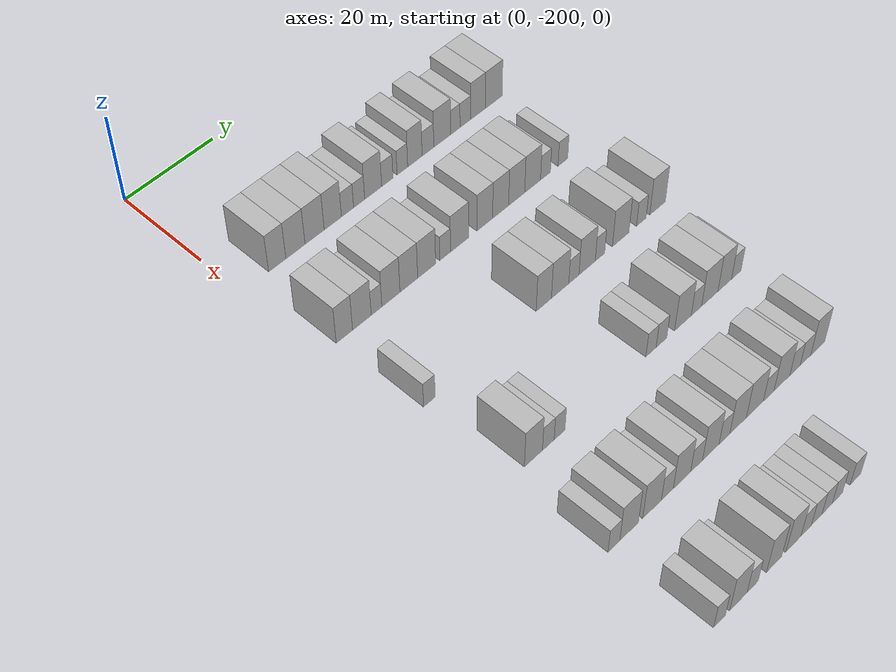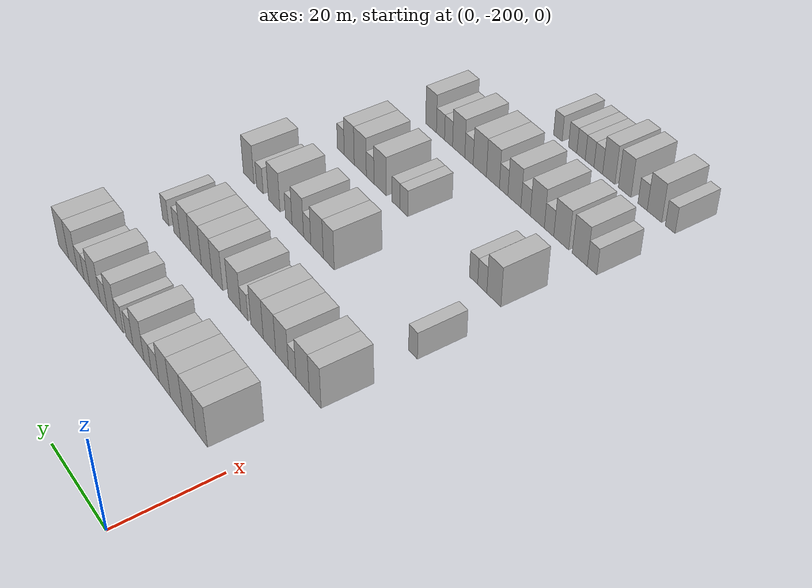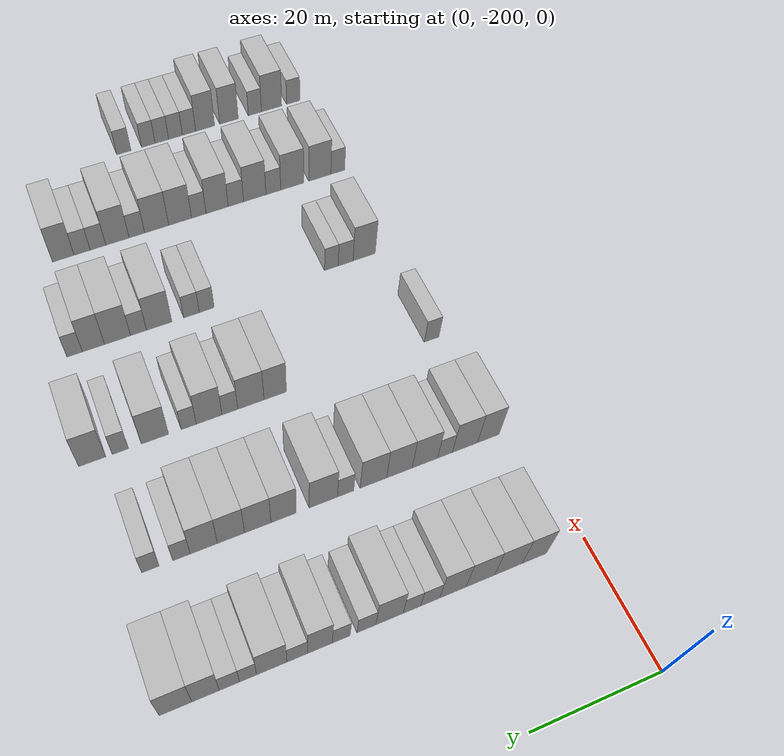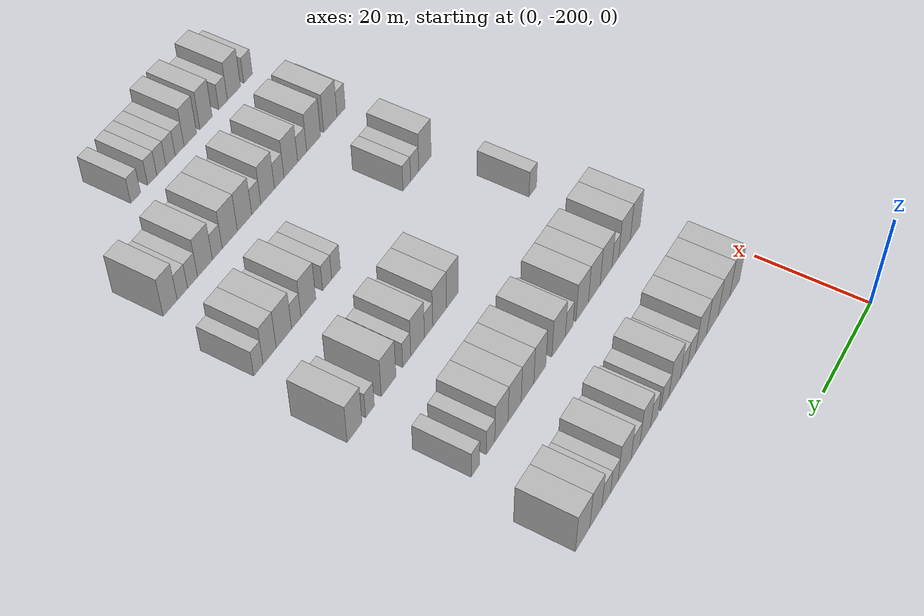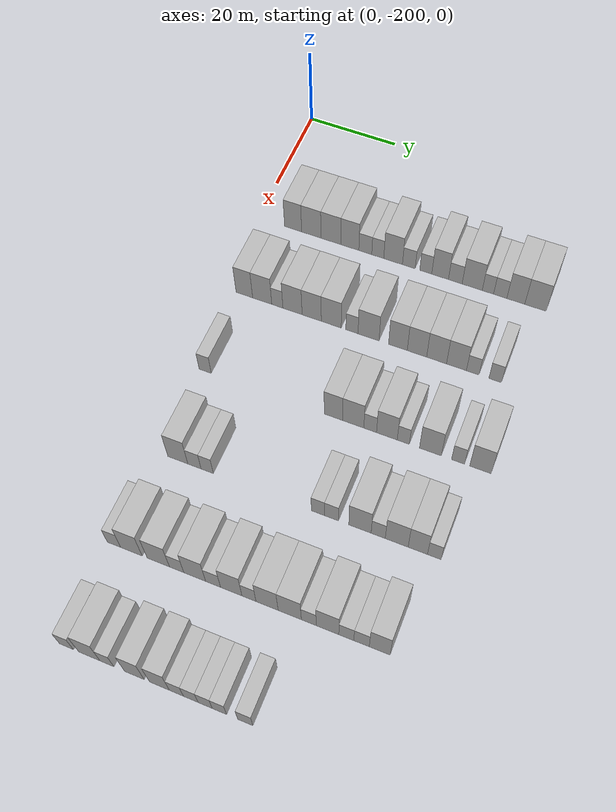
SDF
<sdf version="1.6">
 <world name="default">
  <model name="building_33">
   <static>1</static>
   <pose>25.0000 -191.9185 0 0.000000 0.000000 0.000000</pose>
   <link name="link">
    <pose>0 0 4.50 0 0 0</pose>
    <collision name="collision"><geometry><box><size>10.0000 3.9061 9.0000</size></box></geometry></collision>
    <visual name="visual">
     <cast_shadows>0</cast_shadows>
     <geometry><box><size>10.0000 3.9061 9.0000</size></box></geometry>
     <material>
      <script>
       <uri>model://HANNAS_wall/materials/scripts</uri>
       <uri>model://HANNAS_wall/materials/textures</uri>
       <name>vrc/HANNAS_wall</name>
      </script>
     </material>
    </visual>
   </link>
  </model>
  <model name="building_34">
   <static>1</static>
   <pose>25.0000 -187.7657 0 0.000000 0.000000 0.000000</pose>
   <link name="link">
    <pose>0 0 4.50 0 0 0</pose>
    <collision name="collision"><geometry><box><size>10.0000 4.3996 9.0000</size></box></geometry></collision>
    <visual name="visual">
     <cast_shadows>0</cast_shadows>
     <geometry><box><size>10.0000 4.3996 9.0000</size></box></geometry>
     <material>
      <script>
       <uri>model://HANNAS_wall/materials/scripts</uri>
       <uri>model://HANNAS_wall/materials/textures</uri>
       <name>vrc/HANNAS_wall</name>
      </script>
     </material>
    </visual>
   </link>
  </model>
  <model name="building_35">
   <static>1</static>
   <pose>25.0000 -183.3418 0 0.000000 0.000000 0.000000</pose>
   <link name="link">
    <pose>0 0 4.50 0 0 0</pose>
    <collision name="collision"><geometry><box><size>10.0000 4.4481 9.0000</size></box></geometry></collision>
    <visual name="visual">
     <cast_shadows>0</cast_shadows>
     <geometry><box><size>10.0000 4.4481 9.0000</size></box></geometry>
     <material>
      <script>
       <uri>model://HANNAS_wall/materials/scripts</uri>
       <uri>model://HANNAS_wall/materials/textures</uri>
       <name>vrc/HANNAS_wall</name>
      </script>
     </material>
    </visual>
   </link>
  </model>
  <model name="building_36">
   <static>1</static>
   <pose>25.0000 -179.0814 0 0.000000 0.000000 0.000000</pose>
   <link name="link">
    <pose>0 0 4.50 0 0 0</pose>
    <collision name="collision"><geometry><box><size>10.0000 4.0726 9.0000</size></box></geometry></collision>
    <visual name="visual">
     <cast_shadows>0</cast_shadows>
     <geometry><box><size>10.0000 4.0726 9.0000</size></box></geometry>
     <material>
      <script>
       <uri>model://HANNAS_wall/materials/scripts</uri>
       <uri>model://HANNAS_wall/materials/textures</uri>
       <name>vrc/HANNAS_wall</name>
      </script>
     </material>
    </visual>
   </link>
  </model>
  <model name="building_37">
   <static>1</static>
   <pose>25.0000 -175.6063 0 0.000000 0.000000 0.000000</pose>
   <link name="link">
    <pose>0 0 3.00 0 0 0</pose>
    <collision name="collision"><geometry><box><size>10.0000 2.8776 6.0000</size></box></geometry></collision>
    <visual name="visual">
     <cast_shadows>0</cast_shadows>
     <geometry><box><size>10.0000 2.8776 6.0000</size></box></geometry>
     <material>
      <script>
       <uri>model://HANNAS_wall/materials/scripts</uri>
       <uri>model://HANNAS_wall/materials/textures</uri>
       <name>vrc/HANNAS_wall</name>
      </script>
     </material>
    </visual>
   </link>
  </model>
  <model name="building_38">
   <static>1</static>
   <pose>25.0000 -172.8382 0 0.000000 0.000000 0.000000</pose>
   <link name="link">
    <pose>0 0 3.00 0 0 0</pose>
    <collision name="collision"><geometry><box><size>10.0000 2.6586 6.0000</size></box></geometry></collision>
    <visual name="visual">
     <cast_shadows>0</cast_shadows>
     <geometry><box><size>10.0000 2.6586 6.0000</size></box></geometry>
     <material>
      <script>
       <uri>model://HANNAS_wall/materials/scripts</uri>
       <uri>model://HANNAS_wall/materials/textures</uri>
       <name>vrc/HANNAS_wall</name>
      </script>
     </material>
    </visual>
   </link>
  </model>
  <model name="building_39">
   <static>1</static>
   <pose>25.0000 -169.4492 0 0.000000 0.000000 0.000000</pose>
   <link name="link">
    <pose>0 0 4.50 0 0 0</pose>
    <collision name="collision"><geometry><box><size>10.0000 4.1195 9.0000</size></box></geometry></collision>
    <visual name="visual">
     <cast_shadows>0</cast_shadows>
     <geometry><box><size>10.0000 4.1195 9.0000</size></box></geometry>
     <material>
      <script>
       <uri>model://HANNAS_wall/materials/scripts</uri>
       <uri>model://HANNAS_wall/materials/textures</uri>
       <name>vrc/HANNAS_wall</name>
      </script>
     </material>
    </visual>
   </link>
  </model>
  <model name="building_40">
   <static>1</static>
   <pose>25.0000 -165.9965 0 0.000000 0.000000 0.000000</pose>
   <link name="link">
    <pose>0 0 3.00 0 0 0</pose>
    <collision name="collision"><geometry><box><size>10.0000 2.7859 6.0000</size></box></geometry></collision>
    <visual name="visual">
     <cast_shadows>0</cast_shadows>
     <geometry><box><size>10.0000 2.7859 6.0000</size></box></geometry>
     <material>
      <script>
       <uri>model://HANNAS_wall/materials/scripts</uri>
       <uri>model://HANNAS_wall/materials/textures</uri>
       <name>vrc/HANNAS_wall</name>
      </script>
     </material>
    </visual>
   </link>
  </model>
  <model name="building_41">
   <static>1</static>
   <pose>25.0000 -162.2922 0 0.000000 0.000000 0.000000</pose>
   <link name="link">
    <pose>0 0 3.00 0 0 0</pose>
    <collision name="collision"><geometry><box><size>10.0000 2.6226 6.0000</size></box></geometry></collision>
    <visual name="visual">
     <cast_shadows>0</cast_shadows>
     <geometry><box><size>10.0000 2.6226 6.0000</size></box></geometry>
     <material>
      <script>
       <uri>model://HANNAS_wall/materials/scripts</uri>
       <uri>model://HANNAS_wall/materials/textures</uri>
       <name>vrc/HANNAS_wall</name>
      </script>
     </material>
    </visual>
   </link>
  </model>
  <model name="building_42">
   <static>1</static>
   <pose>25.0000 -159.1725 0 0.000000 0.000000 0.000000</pose>
   <link name="link">
    <pose>0 0 4.50 0 0 0</pose>
    <collision name="collision"><geometry><box><size>10.0000 3.6168 9.0000</size></box></geometry></collision>
    <visual name="visual">
     <cast_shadows>0</cast_shadows>
     <geometry><box><size>10.0000 3.6168 9.0000</size></box></geometry>
     <material>
      <script>
       <uri>model://HANNAS_wall/materials/scripts</uri>
       <uri>model://HANNAS_wall/materials/textures</uri>
       <name>vrc/HANNAS_wall</name>
      </script>
     </material>
    </visual>
   </link>
  </model>
  <model name="building_43">
   <static>1</static>
   <pose>25.0000 -155.8891 0 0.000000 0.000000 0.000000</pose>
   <link name="link">
    <pose>0 0 3.00 0 0 0</pose>
    <collision name="collision"><geometry><box><size>10.0000 2.9499 6.0000</size></box></geometry></collision>
    <visual name="visual">
     <cast_shadows>0</cast_shadows>
     <geometry><box><size>10.0000 2.9499 6.0000</size></box></geometry>
     <material>
      <script>
       <uri>model://HANNAS_wall/materials/scripts</uri>
       <uri>model://HANNAS_wall/materials/textures</uri>
       <name>vrc/HANNAS_wall</name>
      </script>
     </material>
    </visual>
   </link>
  </model>
  <model name="building_44">
   <static>1</static>
   <pose>25.0000 -152.2592 0 0.000000 0.000000 0.000000</pose>
   <link name="link">
    <pose>0 0 4.50 0 0 0</pose>
    <collision name="collision"><geometry><box><size>10.0000 4.3100 9.0000</size></box></geometry></collision>
    <visual name="visual">
     <cast_shadows>0</cast_shadows>
     <geometry><box><size>10.0000 4.3100 9.0000</size></box></geometry>
     <material>
      <script>
       <uri>model://HANNAS_wall/materials/scripts</uri>
       <uri>model://HANNAS_wall/materials/textures</uri>
       <name>vrc/HANNAS_wall</name>
      </script>
     </material>
    </visual>
   </link>
  </model>
  <model name="building_45">
   <static>1</static>
   <pose>25.0000 -148.8982 0 0.000000 0.000000 0.000000</pose>
   <link name="link">
    <pose>0 0 3.00 0 0 0</pose>
    <collision name="collision"><geometry><box><size>10.0000 2.4118 6.0000</size></box></geometry></collision>
    <visual name="visual">
     <cast_shadows>0</cast_shadows>
     <geometry><box><size>10.0000 2.4118 6.0000</size></box></geometry>
     <material>
      <script>
       <uri>model://HANNAS_wall/materials/scripts</uri>
       <uri>model://HANNAS_wall/materials/textures</uri>
       <name>vrc/HANNAS_wall</name>
      </script>
     </material>
    </visual>
   </link>
  </model>
  <model name="building_46">
   <static>1</static>
   <pose>25.0000 -146.2848 0 0.000000 0.000000 0.000000</pose>
   <link name="link">
    <pose>0 0 3.00 0 0 0</pose>
    <collision name="collision"><geometry><box><size>10.0000 2.8150 6.0000</size></box></geometry></collision>
    <visual name="visual">
     <cast_shadows>0</cast_shadows>
     <geometry><box><size>10.0000 2.8150 6.0000</size></box></geometry>
     <material>
      <script>
       <uri>model://HANNAS_wall/materials/scripts</uri>
       <uri>model://HANNAS_wall/materials/textures</uri>
       <name>vrc/HANNAS_wall</name>
      </script>
     </material>
    </visual>
   </link>
  </model>
  <model name="building_47">
   <static>1</static>
   <pose>25.0000 -142.9881 0 0.000000 0.000000 0.000000</pose>
   <link name="link">
    <pose>0 0 4.50 0 0 0</pose>
    <collision name="collision"><geometry><box><size>10.0000 3.7786 9.0000</size></box></geometry></collision>
    <visual name="visual">
     <cast_shadows>0</cast_shadows>
     <geometry><box><size>10.0000 3.7786 9.0000</size></box></geometry>
     <material>
      <script>
       <uri>model://HANNAS_wall/materials/scripts</uri>
       <uri>model://HANNAS_wall/materials/textures</uri>
       <name>vrc/HANNAS_wall</name>
      </script>
     </material>
    </visual>
   </link>
  </model>
  <model name="building_48">
   <static>1</static>
   <pose>25.0000 -138.8593 0 0.000000 0.000000 0.000000</pose>
   <link name="link">
    <pose>0 0 4.50 0 0 0</pose>
    <collision name="collision"><geometry><box><size>10.0000 4.4790 9.0000</size></box></geometry></collision>
    <visual name="visual">
     <cast_shadows>0</cast_shadows>
     <geometry><box><size>10.0000 4.4790 9.0000</size></box></geometry>
     <material>
      <script>
       <uri>model://HANNAS_wall/materials/scripts</uri>
       <uri>model://HANNAS_wall/materials/textures</uri>
       <name>vrc/HANNAS_wall</name>
      </script>
     </material>
    </visual>
   </link>
  </model>
  <model name="building_207">
   <static>1</static>
   <pose>44.0000 -194.6376 0 0.000000 0.000000 0.000000</pose>
   <link name="link">
    <pose>0 0 4.50 0 0 0</pose>
    <collision name="collision"><geometry><box><size>10.0000 3.6764 9.0000</size></box></geometry></collision>
    <visual name="visual">
     <cast_shadows>0</cast_shadows>
     <geometry><box><size>10.0000 3.6764 9.0000</size></box></geometry>
     <material>
      <script>
       <uri>model://HANNAS_wall/materials/scripts</uri>
       <uri>model://HANNAS_wall/materials/textures</uri>
       <name>vrc/HANNAS_wall</name>
      </script>
     </material>
    </visual>
   </link>
  </model>
  <model name="building_208">
   <static>1</static>
   <pose>44.0000 -190.6866 0 0.000000 0.000000 0.000000</pose>
   <link name="link">
    <pose>0 0 4.50 0 0 0</pose>
    <collision name="collision"><geometry><box><size>10.0000 4.2257 9.0000</size></box></geometry></collision>
    <visual name="visual">
     <cast_shadows>0</cast_shadows>
     <geometry><box><size>10.0000 4.2257 9.0000</size></box></geometry>
     <material>
      <script>
       <uri>model://HANNAS_wall/materials/scripts</uri>
       <uri>model://HANNAS_wall/materials/textures</uri>
       <name>vrc/HANNAS_wall</name>
      </script>
     </material>
    </visual>
   </link>
  </model>
  <model name="building_209">
   <static>1</static>
   <pose>44.0000 -187.3501 0 0.000000 0.000000 0.000000</pose>
   <link name="link">
    <pose>0 0 3.00 0 0 0</pose>
    <collision name="collision"><geometry><box><size>10.0000 2.4473 6.0000</size></box></geometry></collision>
    <visual name="visual">
     <cast_shadows>0</cast_shadows>
     <geometry><box><size>10.0000 2.4473 6.0000</size></box></geometry>
     <material>
      <script>
       <uri>model://HANNAS_wall/materials/scripts</uri>
       <uri>model://HANNAS_wall/materials/textures</uri>
       <name>vrc/HANNAS_wall</name>
      </script>
     </material>
    </visual>
   </link>
  </model>
  <model name="building_210">
   <static>1</static>
   <pose>44.0000 -184.0277 0 0.000000 0.000000 0.000000</pose>
   <link name="link">
    <pose>0 0 4.50 0 0 0</pose>
    <collision name="collision"><geometry><box><size>10.0000 4.1975 9.0000</size></box></geometry></collision>
    <visual name="visual">
     <cast_shadows>0</cast_shadows>
     <geometry><box><size>10.0000 4.1975 9.0000</size></box></geometry>
     <material>
      <script>
       <uri>model://HANNAS_wall/materials/scripts</uri>
       <uri>model://HANNAS_wall/materials/textures</uri>
       <name>vrc/HANNAS_wall</name>
      </script>
     </material>
    </visual>
   </link>
  </model>
  <model name="building_211">
   <static>1</static>
   <pose>44.0000 -179.8488 0 0.000000 0.000000 0.000000</pose>
   <link name="link">
    <pose>0 0 4.50 0 0 0</pose>
    <collision name="collision"><geometry><box><size>10.0000 4.1602 9.0000</size></box></geometry></collision>
    <visual name="visual">
     <cast_shadows>0</cast_shadows>
     <geometry><box><size>10.0000 4.1602 9.0000</size></box></geometry>
     <material>
      <script>
       <uri>model://HANNAS_wall/materials/scripts</uri>
       <uri>model://HANNAS_wall/materials/textures</uri>
       <name>vrc/HANNAS_wall</name>
      </script>
     </material>
    </visual>
   </link>
  </model>
  <model name="building_212">
   <static>1</static>
   <pose>44.0000 -175.6267 0 0.000000 0.000000 0.000000</pose>
   <link name="link">
    <pose>0 0 4.50 0 0 0</pose>
    <collision name="collision"><geometry><box><size>10.0000 4.2840 9.0000</size></box></geometry></collision>
    <visual name="visual">
     <cast_shadows>0</cast_shadows>
     <geometry><box><size>10.0000 4.2840 9.0000</size></box></geometry>
     <material>
      <script>
       <uri>model://HANNAS_wall/materials/scripts</uri>
       <uri>model://HANNAS_wall/materials/textures</uri>
       <name>vrc/HANNAS_wall</name>
      </script>
     </material>
    </visual>
   </link>
  </model>
  <model name="building_213">
   <static>1</static>
   <pose>44.0000 -171.1856 0 0.000000 0.000000 0.000000</pose>
   <link name="link">
    <pose>0 0 3.00 0 0 0</pose>
    <collision name="collision"><geometry><box><size>10.0000 2.5981 6.0000</size></box></geometry></collision>
    <visual name="visual">
     <cast_shadows>0</cast_shadows>
     <geometry><box><size>10.0000 2.5981 6.0000</size></box></geometry>
     <material>
      <script>
       <uri>model://HANNAS_wall/materials/scripts</uri>
       <uri>model://HANNAS_wall/materials/textures</uri>
       <name>vrc/HANNAS_wall</name>
      </script>
     </material>
    </visual>
   </link>
  </model>
  <model name="building_214">
   <static>1</static>
   <pose>44.0000 -167.6552 0 0.000000 0.000000 0.000000</pose>
   <link name="link">
    <pose>0 0 4.50 0 0 0</pose>
    <collision name="collision"><geometry><box><size>10.0000 4.4629 9.0000</size></box></geometry></collision>
    <visual name="visual">
     <cast_shadows>0</cast_shadows>
     <geometry><box><size>10.0000 4.4629 9.0000</size></box></geometry>
     <material>
      <script>
       <uri>model://HANNAS_wall/materials/scripts</uri>
       <uri>model://HANNAS_wall/materials/textures</uri>
       <name>vrc/HANNAS_wall</name>
      </script>
     </material>
    </visual>
   </link>
  </model>
  <model name="building_215">
   <static>1</static>
   <pose>44.0000 -161.4599 0 0.000000 0.000000 0.000000</pose>
   <link name="link">
    <pose>0 0 4.50 0 0 0</pose>
    <collision name="collision"><geometry><box><size>10.0000 3.9276 9.0000</size></box></geometry></collision>
    <visual name="visual">
     <cast_shadows>0</cast_shadows>
     <geometry><box><size>10.0000 3.9276 9.0000</size></box></geometry>
     <material>
      <script>
       <uri>model://HANNAS_wall/materials/scripts</uri>
       <uri>model://HANNAS_wall/materials/textures</uri>
       <name>vrc/HANNAS_wall</name>
      </script>
     </material>
    </visual>
   </link>
  </model>
  <model name="building_216">
   <static>1</static>
   <pose>44.0000 -157.4738 0 0.000000 0.000000 0.000000</pose>
   <link name="link">
    <pose>0 0 4.50 0 0 0</pose>
    <collision name="collision"><geometry><box><size>10.0000 4.0447 9.0000</size></box></geometry></collision>
    <visual name="visual">
     <cast_shadows>0</cast_shadows>
     <geometry><box><size>10.0000 4.0447 9.0000</size></box></geometry>
     <material>
      <script>
       <uri>model://HANNAS_wall/materials/scripts</uri>
       <uri>model://HANNAS_wall/materials/textures</uri>
       <name>vrc/HANNAS_wall</name>
      </script>
     </material>
    </visual>
   </link>
  </model>
  <model name="building_217">
   <static>1</static>
   <pose>44.0000 -153.4003 0 0.000000 0.000000 0.000000</pose>
   <link name="link">
    <pose>0 0 4.50 0 0 0</pose>
    <collision name="collision"><geometry><box><size>10.0000 4.1022 9.0000</size></box></geometry></collision>
    <visual name="visual">
     <cast_shadows>0</cast_shadows>
     <geometry><box><size>10.0000 4.1022 9.0000</size></box></geometry>
     <material>
      <script>
       <uri>model://HANNAS_wall/materials/scripts</uri>
       <uri>model://HANNAS_wall/materials/textures</uri>
       <name>vrc/HANNAS_wall</name>
      </script>
     </material>
    </visual>
   </link>
  </model>
  <model name="building_218">
   <static>1</static>
   <pose>44.0000 -149.3095 0 0.000000 0.000000 0.000000</pose>
   <link name="link">
    <pose>0 0 4.50 0 0 0</pose>
    <collision name="collision"><geometry><box><size>10.0000 4.0795 9.0000</size></box></geometry></collision>
    <visual name="visual">
     <cast_shadows>0</cast_shadows>
     <geometry><box><size>10.0000 4.0795 9.0000</size></box></geometry>
     <material>
      <script>
       <uri>model://HANNAS_wall/materials/scripts</uri>
       <uri>model://HANNAS_wall/materials/textures</uri>
       <name>vrc/HANNAS_wall</name>
      </script>
     </material>
    </visual>
   </link>
  </model>
  <model name="building_219">
   <static>1</static>
   <pose>44.0000 -145.9776 0 0.000000 0.000000 0.000000</pose>
   <link name="link">
    <pose>0 0 3.00 0 0 0</pose>
    <collision name="collision"><geometry><box><size>10.0000 2.5843 6.0000</size></box></geometry></collision>
    <visual name="visual">
     <cast_shadows>0</cast_shadows>
     <geometry><box><size>10.0000 2.5843 6.0000</size></box></geometry>
     <material>
      <script>
       <uri>model://HANNAS_wall/materials/scripts</uri>
       <uri>model://HANNAS_wall/materials/textures</uri>
       <name>vrc/HANNAS_wall</name>
      </script>
     </material>
    </visual>
   </link>
  </model>
  <model name="building_220">
   <static>1</static>
   <pose>44.0000 -141.4108 0 0.000000 0.000000 0.000000</pose>
   <link name="link">
    <pose>0 0 3.00 0 0 0</pose>
    <collision name="collision"><geometry><box><size>10.0000 2.5492 6.0000</size></box></geometry></collision>
    <visual name="visual">
     <cast_shadows>0</cast_shadows>
     <geometry><box><size>10.0000 2.5492 6.0000</size></box></geometry>
     <material>
      <script>
       <uri>model://HANNAS_wall/materials/scripts</uri>
       <uri>model://HANNAS_wall/materials/textures</uri>
       <name>vrc/HANNAS_wall</name>
      </script>
     </material>
    </visual>
   </link>
  </model>
  <model name="building_380">
   <static>1</static>
   <pose>63.0000 -194.4440 0 0.000000 0.000000 0.000000</pose>
   <link name="link">
    <pose>0 0 3.00 0 0 0</pose>
    <collision name="collision"><geometry><box><size>10.0000 2.5979 6.0000</size></box></geometry></collision>
    <visual name="visual">
     <cast_shadows>0</cast_shadows>
     <geometry><box><size>10.0000 2.5979 6.0000</size></box></geometry>
     <material>
      <script>
       <uri>model://HANNAS_wall/materials/scripts</uri>
       <uri>model://HANNAS_wall/materials/textures</uri>
       <name>vrc/HANNAS_wall</name>
      </script>
     </material>
    </visual>
   </link>
  </model>
  <model name="building_381">
   <static>1</static>
   <pose>63.0000 -167.5469 0 0.000000 0.000000 0.000000</pose>
   <link name="link">
    <pose>0 0 4.50 0 0 0</pose>
    <collision name="collision"><geometry><box><size>10.0000 3.7321 9.0000</size></box></geometry></collision>
    <visual name="visual">
     <cast_shadows>0</cast_shadows>
     <geometry><box><size>10.0000 3.7321 9.0000</size></box></geometry>
     <material>
      <script>
       <uri>model://HANNAS_wall/materials/scripts</uri>
       <uri>model://HANNAS_wall/materials/textures</uri>
       <name>vrc/HANNAS_wall</name>
      </script>
     </material>
    </visual>
   </link>
  </model>
  <model name="building_382">
   <static>1</static>
   <pose>63.0000 -163.5273 0 0.000000 0.000000 0.000000</pose>
   <link name="link">
    <pose>0 0 4.50 0 0 0</pose>
    <collision name="collision"><geometry><box><size>10.0000 4.3071 9.0000</size></box></geometry></collision>
    <visual name="visual">
     <cast_shadows>0</cast_shadows>
     <geometry><box><size>10.0000 4.3071 9.0000</size></box></geometry>
     <material>
      <script>
       <uri>model://HANNAS_wall/materials/scripts</uri>
       <uri>model://HANNAS_wall/materials/textures</uri>
       <name>vrc/HANNAS_wall</name>
      </script>
     </material>
    </visual>
   </link>
  </model>
  <model name="building_383">
   <static>1</static>
   <pose>63.0000 -160.0920 0 0.000000 0.000000 0.000000</pose>
   <link name="link">
    <pose>0 0 3.00 0 0 0</pose>
    <collision name="collision"><geometry><box><size>10.0000 2.5634 6.0000</size></box></geometry></collision>
    <visual name="visual">
     <cast_shadows>0</cast_shadows>
     <geometry><box><size>10.0000 2.5634 6.0000</size></box></geometry>
     <material>
      <script>
       <uri>model://HANNAS_wall/materials/scripts</uri>
       <uri>model://HANNAS_wall/materials/textures</uri>
       <name>vrc/HANNAS_wall</name>
      </script>
     </material>
    </visual>
   </link>
  </model>
  <model name="building_384">
   <static>1</static>
   <pose>63.0000 -156.7376 0 0.000000 0.000000 0.000000</pose>
   <link name="link">
    <pose>0 0 4.50 0 0 0</pose>
    <collision name="collision"><geometry><box><size>10.0000 4.1453 9.0000</size></box></geometry></collision>
    <visual name="visual">
     <cast_shadows>0</cast_shadows>
     <geometry><box><size>10.0000 4.1453 9.0000</size></box></geometry>
     <material>
      <script>
       <uri>model://HANNAS_wall/materials/scripts</uri>
       <uri>model://HANNAS_wall/materials/textures</uri>
       <name>vrc/HANNAS_wall</name>
      </script>
     </material>
    </visual>
   </link>
  </model>
  <model name="building_385">
   <static>1</static>
   <pose>63.0000 -153.4557 0 0.000000 0.000000 0.000000</pose>
   <link name="link">
    <pose>0 0 3.00 0 0 0</pose>
    <collision name="collision"><geometry><box><size>10.0000 2.4185 6.0000</size></box></geometry></collision>
    <visual name="visual">
     <cast_shadows>0</cast_shadows>
     <geometry><box><size>10.0000 2.4185 6.0000</size></box></geometry>
     <material>
      <script>
       <uri>model://HANNAS_wall/materials/scripts</uri>
       <uri>model://HANNAS_wall/materials/textures</uri>
       <name>vrc/HANNAS_wall</name>
      </script>
     </material>
    </visual>
   </link>
  </model>
  <model name="building_386">
   <static>1</static>
   <pose>63.0000 -148.0898 0 0.000000 0.000000 0.000000</pose>
   <link name="link">
    <pose>0 0 4.50 0 0 0</pose>
    <collision name="collision"><geometry><box><size>10.0000 4.3132 9.0000</size></box></geometry></collision>
    <visual name="visual">
     <cast_shadows>0</cast_shadows>
     <geometry><box><size>10.0000 4.3132 9.0000</size></box></geometry>
     <material>
      <script>
       <uri>model://HANNAS_wall/materials/scripts</uri>
       <uri>model://HANNAS_wall/materials/textures</uri>
       <name>vrc/HANNAS_wall</name>
      </script>
     </material>
    </visual>
   </link>
  </model>
  <model name="building_387">
   <static>1</static>
   <pose>63.0000 -142.6684 0 0.000000 0.000000 0.000000</pose>
   <link name="link">
    <pose>0 0 3.00 0 0 0</pose>
    <collision name="collision"><geometry><box><size>10.0000 2.5295 6.0000</size></box></geometry></collision>
    <visual name="visual">
     <cast_shadows>0</cast_shadows>
     <geometry><box><size>10.0000 2.5295 6.0000</size></box></geometry>
     <material>
      <script>
       <uri>model://HANNAS_wall/materials/scripts</uri>
       <uri>model://HANNAS_wall/materials/textures</uri>
       <name>vrc/HANNAS_wall</name>
      </script>
     </material>
    </visual>
   </link>
  </model>
  <model name="building_388">
   <static>1</static>
   <pose>63.0000 -138.3222 0 0.000000 0.000000 0.000000</pose>
   <link name="link">
    <pose>0 0 4.50 0 0 0</pose>
    <collision name="collision"><geometry><box><size>10.0000 4.1631 9.0000</size></box></geometry></collision>
    <visual name="visual">
     <cast_shadows>0</cast_shadows>
     <geometry><box><size>10.0000 4.1631 9.0000</size></box></geometry>
     <material>
      <script>
       <uri>model://HANNAS_wall/materials/scripts</uri>
       <uri>model://HANNAS_wall/materials/textures</uri>
       <name>vrc/HANNAS_wall</name>
      </script>
     </material>
    </visual>
   </link>
  </model>
  <model name="building_551">
   <static>1</static>
   <pose>82.0000 -191.0634 0 0.000000 0.000000 0.000000</pose>
   <link name="link">
    <pose>0 0 4.50 0 0 0</pose>
    <collision name="collision"><geometry><box><size>10.0000 4.1087 9.0000</size></box></geometry></collision>
    <visual name="visual">
     <cast_shadows>0</cast_shadows>
     <geometry><box><size>10.0000 4.1087 9.0000</size></box></geometry>
     <material>
      <script>
       <uri>model://HANNAS_wall/materials/scripts</uri>
       <uri>model://HANNAS_wall/materials/textures</uri>
       <name>vrc/HANNAS_wall</name>
      </script>
     </material>
    </visual>
   </link>
  </model>
  <model name="building_552">
   <static>1</static>
   <pose>82.0000 -187.6525 0 0.000000 0.000000 0.000000</pose>
   <link name="link">
    <pose>0 0 3.00 0 0 0</pose>
    <collision name="collision"><geometry><box><size>10.0000 2.7131 6.0000</size></box></geometry></collision>
    <visual name="visual">
     <cast_shadows>0</cast_shadows>
     <geometry><box><size>10.0000 2.7131 6.0000</size></box></geometry>
     <material>
      <script>
       <uri>model://HANNAS_wall/materials/scripts</uri>
       <uri>model://HANNAS_wall/materials/textures</uri>
       <name>vrc/HANNAS_wall</name>
      </script>
     </material>
    </visual>
   </link>
  </model>
  <model name="building_553">
   <static>1</static>
   <pose>82.0000 -185.0466 0 0.000000 0.000000 0.000000</pose>
   <link name="link">
    <pose>0 0 3.00 0 0 0</pose>
    <collision name="collision"><geometry><box><size>10.0000 2.4986 6.0000</size></box></geometry></collision>
    <visual name="visual">
     <cast_shadows>0</cast_shadows>
     <geometry><box><size>10.0000 2.4986 6.0000</size></box></geometry>
     <material>
      <script>
       <uri>model://HANNAS_wall/materials/scripts</uri>
       <uri>model://HANNAS_wall/materials/textures</uri>
       <name>vrc/HANNAS_wall</name>
      </script>
     </material>
    </visual>
   </link>
  </model>
  <model name="building_554">
   <static>1</static>
   <pose>82.0000 -162.9452 0 0.000000 0.000000 0.000000</pose>
   <link name="link">
    <pose>0 0 3.00 0 0 0</pose>
    <collision name="collision"><geometry><box><size>10.0000 2.5681 6.0000</size></box></geometry></collision>
    <visual name="visual">
     <cast_shadows>0</cast_shadows>
     <geometry><box><size>10.0000 2.5681 6.0000</size></box></geometry>
     <material>
      <script>
       <uri>model://HANNAS_wall/materials/scripts</uri>
       <uri>model://HANNAS_wall/materials/textures</uri>
       <name>vrc/HANNAS_wall</name>
      </script>
     </material>
    </visual>
   </link>
  </model>
  <model name="building_555">
   <static>1</static>
   <pose>82.0000 -160.3179 0 0.000000 0.000000 0.000000</pose>
   <link name="link">
    <pose>0 0 3.00 0 0 0</pose>
    <collision name="collision"><geometry><box><size>10.0000 2.6866 6.0000</size></box></geometry></collision>
    <visual name="visual">
     <cast_shadows>0</cast_shadows>
     <geometry><box><size>10.0000 2.6866 6.0000</size></box></geometry>
     <material>
      <script>
       <uri>model://HANNAS_wall/materials/scripts</uri>
       <uri>model://HANNAS_wall/materials/textures</uri>
       <name>vrc/HANNAS_wall</name>
      </script>
     </material>
    </visual>
   </link>
  </model>
  <model name="building_556">
   <static>1</static>
   <pose>82.0000 -154.8346 0 0.000000 0.000000 0.000000</pose>
   <link name="link">
    <pose>0 0 4.50 0 0 0</pose>
    <collision name="collision"><geometry><box><size>10.0000 4.2800 9.0000</size></box></geometry></collision>
    <visual name="visual">
     <cast_shadows>0</cast_shadows>
     <geometry><box><size>10.0000 4.2800 9.0000</size></box></geometry>
     <material>
      <script>
       <uri>model://HANNAS_wall/materials/scripts</uri>
       <uri>model://HANNAS_wall/materials/textures</uri>
       <name>vrc/HANNAS_wall</name>
      </script>
     </material>
    </visual>
   </link>
  </model>
  <model name="building_557">
   <static>1</static>
   <pose>82.0000 -151.3470 0 0.000000 0.000000 0.000000</pose>
   <link name="link">
    <pose>0 0 3.00 0 0 0</pose>
    <collision name="collision"><geometry><box><size>10.0000 2.6951 6.0000</size></box></geometry></collision>
    <visual name="visual">
     <cast_shadows>0</cast_shadows>
     <geometry><box><size>10.0000 2.6951 6.0000</size></box></geometry>
     <material>
      <script>
       <uri>model://HANNAS_wall/materials/scripts</uri>
       <uri>model://HANNAS_wall/materials/textures</uri>
       <name>vrc/HANNAS_wall</name>
      </script>
     </material>
    </visual>
   </link>
  </model>
  <model name="building_558">
   <static>1</static>
   <pose>82.0000 -147.8370 0 0.000000 0.000000 0.000000</pose>
   <link name="link">
    <pose>0 0 4.50 0 0 0</pose>
    <collision name="collision"><geometry><box><size>10.0000 4.3248 9.0000</size></box></geometry></collision>
    <visual name="visual">
     <cast_shadows>0</cast_shadows>
     <geometry><box><size>10.0000 4.3248 9.0000</size></box></geometry>
     <material>
      <script>
       <uri>model://HANNAS_wall/materials/scripts</uri>
       <uri>model://HANNAS_wall/materials/textures</uri>
       <name>vrc/HANNAS_wall</name>
      </script>
     </material>
    </visual>
   </link>
  </model>
  <model name="building_559">
   <static>1</static>
   <pose>82.0000 -143.8580 0 0.000000 0.000000 0.000000</pose>
   <link name="link">
    <pose>0 0 4.50 0 0 0</pose>
    <collision name="collision"><geometry><box><size>10.0000 3.6333 9.0000</size></box></geometry></collision>
    <visual name="visual">
     <cast_shadows>0</cast_shadows>
     <geometry><box><size>10.0000 3.6333 9.0000</size></box></geometry>
     <material>
      <script>
       <uri>model://HANNAS_wall/materials/scripts</uri>
       <uri>model://HANNAS_wall/materials/textures</uri>
       <name>vrc/HANNAS_wall</name>
      </script>
     </material>
    </visual>
   </link>
  </model>
  <model name="building_560">
   <static>1</static>
   <pose>82.0000 -140.7719 0 0.000000 0.000000 0.000000</pose>
   <link name="link">
    <pose>0 0 3.00 0 0 0</pose>
    <collision name="collision"><geometry><box><size>10.0000 2.5388 6.0000</size></box></geometry></collision>
    <visual name="visual">
     <cast_shadows>0</cast_shadows>
     <geometry><box><size>10.0000 2.5388 6.0000</size></box></geometry>
     <material>
      <script>
       <uri>model://HANNAS_wall/materials/scripts</uri>
       <uri>model://HANNAS_wall/materials/textures</uri>
       <name>vrc/HANNAS_wall</name>
      </script>
     </material>
    </visual>
   </link>
  </model>
  <model name="building_722">
   <static>1</static>
   <pose>101.0000 -194.3562 0 0.000000 0.000000 0.000000</pose>
   <link name="link">
    <pose>0 0 3.00 0 0 0</pose>
    <collision name="collision"><geometry><box><size>10.0000 2.6866 6.0000</size></box></geometry></collision>
    <visual name="visual">
     <cast_shadows>0</cast_shadows>
     <geometry><box><size>10.0000 2.6866 6.0000</size></box></geometry>
     <material>
      <script>
       <uri>model://HANNAS_wall/materials/scripts</uri>
       <uri>model://HANNAS_wall/materials/textures</uri>
       <name>vrc/HANNAS_wall</name>
      </script>
     </material>
    </visual>
   </link>
  </model>
  <model name="building_723">
   <static>1</static>
   <pose>101.0000 -190.8838 0 0.000000 0.000000 0.000000</pose>
   <link name="link">
    <pose>0 0 4.50 0 0 0</pose>
    <collision name="collision"><geometry><box><size>10.0000 4.2583 9.0000</size></box></geometry></collision>
    <visual name="visual">
     <cast_shadows>0</cast_shadows>
     <geometry><box><size>10.0000 4.2583 9.0000</size></box></geometry>
     <material>
      <script>
       <uri>model://HANNAS_wall/materials/scripts</uri>
       <uri>model://HANNAS_wall/materials/textures</uri>
       <name>vrc/HANNAS_wall</name>
      </script>
     </material>
    </visual>
   </link>
  </model>
  <model name="building_724">
   <static>1</static>
   <pose>101.0000 -185.5686 0 0.000000 0.000000 0.000000</pose>
   <link name="link">
    <pose>0 0 4.50 0 0 0</pose>
    <collision name="collision"><geometry><box><size>10.0000 4.3720 9.0000</size></box></geometry></collision>
    <visual name="visual">
     <cast_shadows>0</cast_shadows>
     <geometry><box><size>10.0000 4.3720 9.0000</size></box></geometry>
     <material>
      <script>
       <uri>model://HANNAS_wall/materials/scripts</uri>
       <uri>model://HANNAS_wall/materials/textures</uri>
       <name>vrc/HANNAS_wall</name>
      </script>
     </material>
    </visual>
   </link>
  </model>
  <model name="building_725">
   <static>1</static>
   <pose>101.0000 -181.9818 0 0.000000 0.000000 0.000000</pose>
   <link name="link">
    <pose>0 0 3.00 0 0 0</pose>
    <collision name="collision"><geometry><box><size>10.0000 2.8018 6.0000</size></box></geometry></collision>
    <visual name="visual">
     <cast_shadows>0</cast_shadows>
     <geometry><box><size>10.0000 2.8018 6.0000</size></box></geometry>
     <material>
      <script>
       <uri>model://HANNAS_wall/materials/scripts</uri>
       <uri>model://HANNAS_wall/materials/textures</uri>
       <name>vrc/HANNAS_wall</name>
      </script>
     </material>
    </visual>
   </link>
  </model>
  <model name="building_726">
   <static>1</static>
   <pose>101.0000 -178.4784 0 0.000000 0.000000 0.000000</pose>
   <link name="link">
    <pose>0 0 4.50 0 0 0</pose>
    <collision name="collision"><geometry><box><size>10.0000 4.2050 9.0000</size></box></geometry></collision>
    <visual name="visual">
     <cast_shadows>0</cast_shadows>
     <geometry><box><size>10.0000 4.2050 9.0000</size></box></geometry>
     <material>
      <script>
       <uri>model://HANNAS_wall/materials/scripts</uri>
       <uri>model://HANNAS_wall/materials/textures</uri>
       <name>vrc/HANNAS_wall</name>
      </script>
     </material>
    </visual>
   </link>
  </model>
  <model name="building_727">
   <static>1</static>
   <pose>101.0000 -174.9396 0 0.000000 0.000000 0.000000</pose>
   <link name="link">
    <pose>0 0 3.00 0 0 0</pose>
    <collision name="collision"><geometry><box><size>10.0000 2.8725 6.0000</size></box></geometry></collision>
    <visual name="visual">
     <cast_shadows>0</cast_shadows>
     <geometry><box><size>10.0000 2.8725 6.0000</size></box></geometry>
     <material>
      <script>
       <uri>model://HANNAS_wall/materials/scripts</uri>
       <uri>model://HANNAS_wall/materials/textures</uri>
       <name>vrc/HANNAS_wall</name>
      </script>
     </material>
    </visual>
   </link>
  </model>
  <model name="building_728">
   <static>1</static>
   <pose>101.0000 -171.4658 0 0.000000 0.000000 0.000000</pose>
   <link name="link">
    <pose>0 0 4.50 0 0 0</pose>
    <collision name="collision"><geometry><box><size>10.0000 4.0751 9.0000</size></box></geometry></collision>
    <visual name="visual">
     <cast_shadows>0</cast_shadows>
     <geometry><box><size>10.0000 4.0751 9.0000</size></box></geometry>
     <material>
      <script>
       <uri>model://HANNAS_wall/materials/scripts</uri>
       <uri>model://HANNAS_wall/materials/textures</uri>
       <name>vrc/HANNAS_wall</name>
      </script>
     </material>
    </visual>
   </link>
  </model>
  <model name="building_729">
   <static>1</static>
   <pose>101.0000 -168.0948 0 0.000000 0.000000 0.000000</pose>
   <link name="link">
    <pose>0 0 3.00 0 0 0</pose>
    <collision name="collision"><geometry><box><size>10.0000 2.6669 6.0000</size></box></geometry></collision>
    <visual name="visual">
     <cast_shadows>0</cast_shadows>
     <geometry><box><size>10.0000 2.6669 6.0000</size></box></geometry>
     <material>
      <script>
       <uri>model://HANNAS_wall/materials/scripts</uri>
       <uri>model://HANNAS_wall/materials/textures</uri>
       <name>vrc/HANNAS_wall</name>
      </script>
     </material>
    </visual>
   </link>
  </model>
  <model name="building_730">
   <static>1</static>
   <pose>101.0000 -164.6788 0 0.000000 0.000000 0.000000</pose>
   <link name="link">
    <pose>0 0 4.50 0 0 0</pose>
    <collision name="collision"><geometry><box><size>10.0000 4.1651 9.0000</size></box></geometry></collision>
    <visual name="visual">
     <cast_shadows>0</cast_shadows>
     <geometry><box><size>10.0000 4.1651 9.0000</size></box></geometry>
     <material>
      <script>
       <uri>model://HANNAS_wall/materials/scripts</uri>
       <uri>model://HANNAS_wall/materials/textures</uri>
       <name>vrc/HANNAS_wall</name>
      </script>
     </material>
    </visual>
   </link>
  </model>
  <model name="building_731">
   <static>1</static>
   <pose>101.0000 -160.4297 0 0.000000 0.000000 0.000000</pose>
   <link name="link">
    <pose>0 0 4.50 0 0 0</pose>
    <collision name="collision"><geometry><box><size>10.0000 4.3330 9.0000</size></box></geometry></collision>
    <visual name="visual">
     <cast_shadows>0</cast_shadows>
     <geometry><box><size>10.0000 4.3330 9.0000</size></box></geometry>
     <material>
      <script>
       <uri>model://HANNAS_wall/materials/scripts</uri>
       <uri>model://HANNAS_wall/materials/textures</uri>
       <name>vrc/HANNAS_wall</name>
      </script>
     </material>
    </visual>
   </link>
  </model>
  <model name="building_732">
   <static>1</static>
   <pose>101.0000 -156.8786 0 0.000000 0.000000 0.000000</pose>
   <link name="link">
    <pose>0 0 3.00 0 0 0</pose>
    <collision name="collision"><geometry><box><size>10.0000 2.7694 6.0000</size></box></geometry></collision>
    <visual name="visual">
     <cast_shadows>0</cast_shadows>
     <geometry><box><size>10.0000 2.7694 6.0000</size></box></geometry>
     <material>
      <script>
       <uri>model://HANNAS_wall/materials/scripts</uri>
       <uri>model://HANNAS_wall/materials/textures</uri>
       <name>vrc/HANNAS_wall</name>
      </script>
     </material>
    </visual>
   </link>
  </model>
  <model name="building_733">
   <static>1</static>
   <pose>101.0000 -153.4250 0 0.000000 0.000000 0.000000</pose>
   <link name="link">
    <pose>0 0 4.50 0 0 0</pose>
    <collision name="collision"><geometry><box><size>10.0000 4.1377 9.0000</size></box></geometry></collision>
    <visual name="visual">
     <cast_shadows>0</cast_shadows>
     <geometry><box><size>10.0000 4.1377 9.0000</size></box></geometry>
     <material>
      <script>
       <uri>model://HANNAS_wall/materials/scripts</uri>
       <uri>model://HANNAS_wall/materials/textures</uri>
       <name>vrc/HANNAS_wall</name>
      </script>
     </material>
    </visual>
   </link>
  </model>
  <model name="building_734">
   <static>1</static>
   <pose>101.0000 -149.9869 0 0.000000 0.000000 0.000000</pose>
   <link name="link">
    <pose>0 0 3.00 0 0 0</pose>
    <collision name="collision"><geometry><box><size>10.0000 2.7385 6.0000</size></box></geometry></collision>
    <visual name="visual">
     <cast_shadows>0</cast_shadows>
     <geometry><box><size>10.0000 2.7385 6.0000</size></box></geometry>
     <material>
      <script>
       <uri>model://HANNAS_wall/materials/scripts</uri>
       <uri>model://HANNAS_wall/materials/textures</uri>
       <name>vrc/HANNAS_wall</name>
      </script>
     </material>
    </visual>
   </link>
  </model>
  <model name="building_735">
   <static>1</static>
   <pose>101.0000 -147.2180 0 0.000000 0.000000 0.000000</pose>
   <link name="link">
    <pose>0 0 3.00 0 0 0</pose>
    <collision name="collision"><geometry><box><size>10.0000 2.7993 6.0000</size></box></geometry></collision>
    <visual name="visual">
     <cast_shadows>0</cast_shadows>
     <geometry><box><size>10.0000 2.7993 6.0000</size></box></geometry>
     <material>
      <script>
       <uri>model://HANNAS_wall/materials/scripts</uri>
       <uri>model://HANNAS_wall/materials/textures</uri>
       <name>vrc/HANNAS_wall</name>
      </script>
     </material>
    </visual>
   </link>
  </model>
  <model name="building_736">
   <static>1</static>
   <pose>101.0000 -143.9404 0 0.000000 0.000000 0.000000</pose>
   <link name="link">
    <pose>0 0 4.50 0 0 0</pose>
    <collision name="collision"><geometry><box><size>10.0000 3.7560 9.0000</size></box></geometry></collision>
    <visual name="visual">
     <cast_shadows>0</cast_shadows>
     <geometry><box><size>10.0000 3.7560 9.0000</size></box></geometry>
     <material>
      <script>
       <uri>model://HANNAS_wall/materials/scripts</uri>
       <uri>model://HANNAS_wall/materials/textures</uri>
       <name>vrc/HANNAS_wall</name>
      </script>
     </material>
    </visual>
   </link>
  </model>
  <model name="building_906">
   <static>1</static>
   <pose>120.0000 -193.3647 0 0.000000 0.000000 0.000000</pose>
   <link name="link">
    <pose>0 0 3.00 0 0 0</pose>
    <collision name="collision"><geometry><box><size>10.0000 2.6792 6.0000</size></box></geometry></collision>
    <visual name="visual">
     <cast_shadows>0</cast_shadows>
     <geometry><box><size>10.0000 2.6792 6.0000</size></box></geometry>
     <material>
      <script>
       <uri>model://HANNAS_wall/materials/scripts</uri>
       <uri>model://HANNAS_wall/materials/textures</uri>
       <name>vrc/HANNAS_wall</name>
      </script>
     </material>
    </visual>
   </link>
  </model>
  <model name="building_907">
   <static>1</static>
   <pose>120.0000 -188.9952 0 0.000000 0.000000 0.000000</pose>
   <link name="link">
    <pose>0 0 4.50 0 0 0</pose>
    <collision name="collision"><geometry><box><size>10.0000 4.0599 9.0000</size></box></geometry></collision>
    <visual name="visual">
     <cast_shadows>0</cast_shadows>
     <geometry><box><size>10.0000 4.0599 9.0000</size></box></geometry>
     <material>
      <script>
       <uri>model://HANNAS_wall/materials/scripts</uri>
       <uri>model://HANNAS_wall/materials/textures</uri>
       <name>vrc/HANNAS_wall</name>
      </script>
     </material>
    </visual>
   </link>
  </model>
  <model name="building_908">
   <static>1</static>
   <pose>120.0000 -185.6552 0 0.000000 0.000000 0.000000</pose>
   <link name="link">
    <pose>0 0 3.00 0 0 0</pose>
    <collision name="collision"><geometry><box><size>10.0000 2.6201 6.0000</size></box></geometry></collision>
    <visual name="visual">
     <cast_shadows>0</cast_shadows>
     <geometry><box><size>10.0000 2.6201 6.0000</size></box></geometry>
     <material>
      <script>
       <uri>model://HANNAS_wall/materials/scripts</uri>
       <uri>model://HANNAS_wall/materials/textures</uri>
       <name>vrc/HANNAS_wall</name>
      </script>
     </material>
    </visual>
   </link>
  </model>
  <model name="building_909">
   <static>1</static>
   <pose>120.0000 -180.5169 0 0.000000 0.000000 0.000000</pose>
   <link name="link">
    <pose>0 0 4.50 0 0 0</pose>
    <collision name="collision"><geometry><box><size>10.0000 3.6564 9.0000</size></box></geometry></collision>
    <visual name="visual">
     <cast_shadows>0</cast_shadows>
     <geometry><box><size>10.0000 3.6564 9.0000</size></box></geometry>
     <material>
      <script>
       <uri>model://HANNAS_wall/materials/scripts</uri>
       <uri>model://HANNAS_wall/materials/textures</uri>
       <name>vrc/HANNAS_wall</name>
      </script>
     </material>
    </visual>
   </link>
  </model>
  <model name="building_910">
   <static>1</static>
   <pose>120.0000 -175.8481 0 0.000000 0.000000 0.000000</pose>
   <link name="link">
    <pose>0 0 4.50 0 0 0</pose>
    <collision name="collision"><geometry><box><size>10.0000 3.6813 9.0000</size></box></geometry></collision>
    <visual name="visual">
     <cast_shadows>0</cast_shadows>
     <geometry><box><size>10.0000 3.6813 9.0000</size></box></geometry>
     <material>
      <script>
       <uri>model://HANNAS_wall/materials/scripts</uri>
       <uri>model://HANNAS_wall/materials/textures</uri>
       <name>vrc/HANNAS_wall</name>
      </script>
     </material>
    </visual>
   </link>
  </model>
  <model name="building_911">
   <static>1</static>
   <pose>120.0000 -172.7146 0 0.000000 0.000000 0.000000</pose>
   <link name="link">
    <pose>0 0 3.00 0 0 0</pose>
    <collision name="collision"><geometry><box><size>10.0000 2.5856 6.0000</size></box></geometry></collision>
    <visual name="visual">
     <cast_shadows>0</cast_shadows>
     <geometry><box><size>10.0000 2.5856 6.0000</size></box></geometry>
     <material>
      <script>
       <uri>model://HANNAS_wall/materials/scripts</uri>
       <uri>model://HANNAS_wall/materials/textures</uri>
       <name>vrc/HANNAS_wall</name>
      </script>
     </material>
    </visual>
   </link>
  </model>
  <model name="building_912">
   <static>1</static>
   <pose>120.0000 -170.0881 0 0.000000 0.000000 0.000000</pose>
   <link name="link">
    <pose>0 0 3.00 0 0 0</pose>
    <collision name="collision"><geometry><box><size>10.0000 2.6674 6.0000</size></box></geometry></collision>
    <visual name="visual">
     <cast_shadows>0</cast_shadows>
     <geometry><box><size>10.0000 2.6674 6.0000</size></box></geometry>
     <material>
      <script>
       <uri>model://HANNAS_wall/materials/scripts</uri>
       <uri>model://HANNAS_wall/materials/textures</uri>
       <name>vrc/HANNAS_wall</name>
      </script>
     </material>
    </visual>
   </link>
  </model>
  <model name="building_913">
   <static>1</static>
   <pose>120.0000 -167.4600 0 0.000000 0.000000 0.000000</pose>
   <link name="link">
    <pose>0 0 3.00 0 0 0</pose>
    <collision name="collision"><geometry><box><size>10.0000 2.5888 6.0000</size></box></geometry></collision>
    <visual name="visual">
     <cast_shadows>0</cast_shadows>
     <geometry><box><size>10.0000 2.5888 6.0000</size></box></geometry>
     <material>
      <script>
       <uri>model://HANNAS_wall/materials/scripts</uri>
       <uri>model://HANNAS_wall/materials/textures</uri>
       <name>vrc/HANNAS_wall</name>
      </script>
     </material>
    </visual>
   </link>
  </model>
  <model name="building_914">
   <static>1</static>
   <pose>120.0000 -164.8765 0 0.000000 0.000000 0.000000</pose>
   <link name="link">
    <pose>0 0 3.00 0 0 0</pose>
    <collision name="collision"><geometry><box><size>10.0000 2.5782 6.0000</size></box></geometry></collision>
    <visual name="visual">
     <cast_shadows>0</cast_shadows>
     <geometry><box><size>10.0000 2.5782 6.0000</size></box></geometry>
     <material>
      <script>
       <uri>model://HANNAS_wall/materials/scripts</uri>
       <uri>model://HANNAS_wall/materials/textures</uri>
       <name>vrc/HANNAS_wall</name>
      </script>
     </material>
    </visual>
   </link>
  </model>
  <model name="building_915">
   <static>1</static>
   <pose>120.0000 -160.2363 0 0.000000 0.000000 0.000000</pose>
   <link name="link">
    <pose>0 0 3.00 0 0 0</pose>
    <collision name="collision"><geometry><box><size>10.0000 2.7021 6.0000</size></box></geometry></collision>
    <visual name="visual">
     <cast_shadows>0</cast_shadows>
     <geometry><box><size>10.0000 2.7021 6.0000</size></box></geometry>
     <material>
      <script>
       <uri>model://HANNAS_wall/materials/scripts</uri>
       <uri>model://HANNAS_wall/materials/textures</uri>
       <name>vrc/HANNAS_wall</name>
      </script>
     </material>
    </visual>
   </link>
  </model>
 </world>
</sdf>
